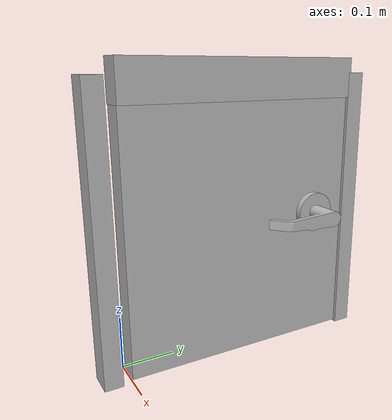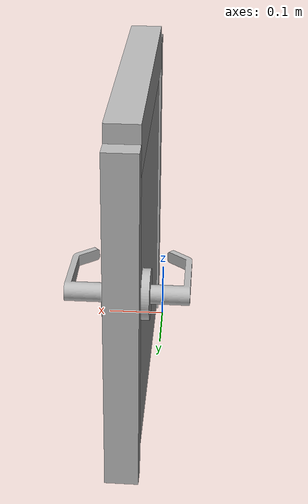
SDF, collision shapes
<?xml version="1.0" ?>
<sdf version="1.5">
  <model name="hinged_door">
    <link name="frame">
      <pose>0.06 -0.0005 0 0 0 0</pose>
      <collision name="collision_1">
        <pose>-0.025145 -0.03429 0.263525 0 0 0</pose>
        <geometry>
          <box>
            <size>0.05029 0.03429 0.52705</size>
          </box>
        </geometry>
      </collision>
      <collision name="collision_2">
        <pose>-0.025145 0.478155 0.263525 0 0 0</pose>
        <geometry>
          <box>
            <size>0.05029 0.03429 0.52705</size>
          </box>
        </geometry>
      </collision>
      <collision name="collision_3">
        <pose>-0.0251450 0.23241  0.5178425 0 0 0</pose>
        <geometry>
          <box>
            <size>0.05029 0.46482 0.07366</size>
          </box>
        </geometry>
      </collision>
      <visual name="visual">
        <pose>0 -0.03429 0 0 0 0</pose>
        <geometry>
          <mesh>
            <uri>model://hinged_door/meshes/frame.dae</uri>
            <scale>1 .5 .25</scale>
          </mesh>
        </geometry>
      </visual>
    </link>
    <link name="door">
      <pose>-0.0 0.000 0.510 3.14159 0 1.57</pose>
      <inertial>
        <mass>41.3256</mass>
        <pose>0.22845 0.0349 0.508 0 0 0</pose>
        <inertia>
          <ixx>14.2053</ixx>
          <ixy>0.0004</ixy>
          <ixz>0.0000</ixz>
          <iyy>17.1997</iyy>
          <iyz>0.0000</iyz>
          <izz>3.0298</izz>
        </inertia>
      </inertial>
      <collision name="collision">
        <pose>0.22845 0.0349 0.2504 0 0 0</pose>
        <geometry>
          <box>
            <size>0.4572 0.04445 0.508</size>
          </box>
        </geometry>
      </collision>
      <visual name="visual">
        <pose>0 -0.06858 0 0 0 0</pose>
        <geometry>
          <mesh>
            <uri>model://hinged_door/meshes/door.dae</uri>
            <scale>.5 1 .25</scale>
          </mesh>
        </geometry>
      </visual>
    </link>
    <link name="handles">
      <pose>0.0 0.4 0.2625 0 3.14 1.57</pose>
      <collision name="handle1_collision">
        <pose>0.015 -0.015 0 -1.57 0 0</pose>
        <geometry>
          <mesh>
            <uri>model://door_handle/meshes/handle.dae</uri>
            <scale>.75 .75 .75</scale>
          </mesh>
        </geometry>
      </collision>
      <visual name="handle1_visual">
        <pose>0.015 -0.015 0 -1.57 0 0</pose>
        <geometry>
          <mesh>
            <uri>model://door_handle/meshes/handle.dae</uri>
            <scale>.75 .75 .75</scale>
          </mesh>
        </geometry>
      </visual>
      <collision name="handle2_collision">
        <pose>0.015 -0.055 0 1.57 0 0</pose>
        <geometry>
          <mesh>
            <uri>model://door_handle/meshes/handle.dae</uri>
            <scale>.75 .75 .75</scale>
          </mesh>
        </geometry>
      </collision>
      <visual name="handle2_visual">
        <pose>0.015 -0.055 0 1.57 0 0</pose>
        <geometry>
          <mesh>
            <uri>model://door_handle/meshes/handle.dae</uri>
            <scale>.75 .75 .75</scale>
          </mesh>
        </geometry>
      </visual>
    </link>
    <joint name="handle" type="revolute">
      <parent>door</parent>
      <child>handles</child>
      <pose>0.015 0 0 0 0 0</pose>
      <axis>
        <xyz>1 0 0</xyz>
        <limit>
          <lower>0</lower>
          <upper>1.58</upper>
        </limit>
        <dynamics>
          <damping>0.1</damping>
          <spring_stiffness>0.3</spring_stiffness>
        </dynamics>
        <use_parent_model_frame>true</use_parent_model_frame>
      </axis>
      <physics>
        <ode>
          <cfm_damping>1</cfm_damping>
        </ode>
      </physics>
    </joint>
    <joint name="hinge" type="revolute">
      <parent>frame</parent>
      <child>door</child>
      <axis>
        <xyz>0 0 1</xyz>
        <limit>
          <lower>0</lower>
          <upper>1.58</upper>
        </limit>
        <dynamics>
          <damping>1.0</damping>
          <friction>1.0</friction>
        </dynamics>
        <use_parent_model_frame>true</use_parent_model_frame>
      </axis>
      <physics>
        <ode>
          <cfm_damping>1</cfm_damping>
        </ode>
      </physics>
    </joint>
    <joint name="world_joint" type="revolute">
      <child>frame</child>
      <parent>world</parent>
      <axis>
        <limit>
          <lower>0</lower>
          <upper>0</upper>
        </limit>
        <xyz>0 1 0</xyz>
        <dynamics>
          <damping>1.0</damping>
        </dynamics>
        <use_parent_model_frame>true</use_parent_model_frame>
      </axis>
      <physics>
        <ode>
          <cfm_damping>1</cfm_damping>
        </ode>
      </physics>
    </joint>
  </model>
</sdf>
